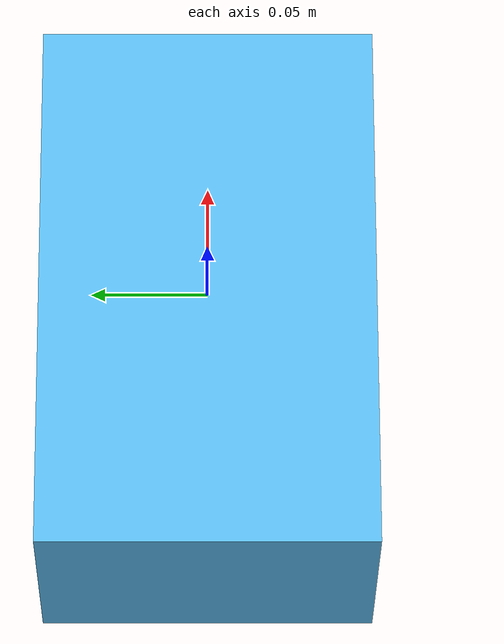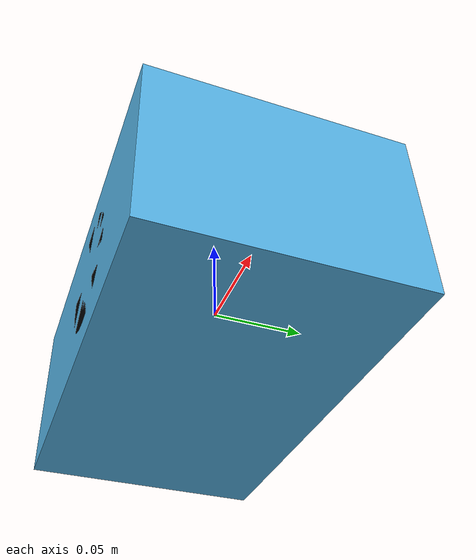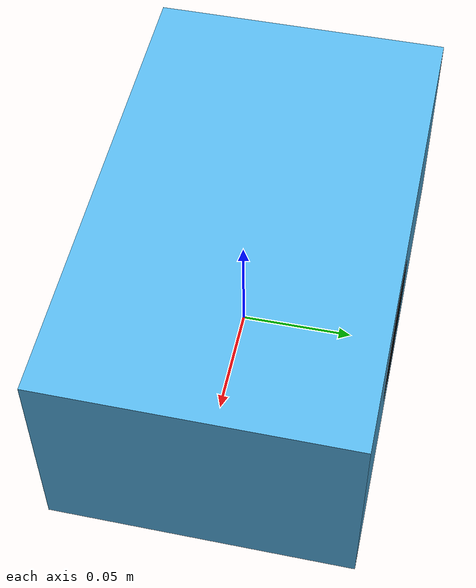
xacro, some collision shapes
<?xml version="1.0" ?>
<!--
 This is a standalone URDF model of 2WD smart car robot
 -->

<robot name="mobile_robot" xmlns:xacro="http://ros.org/wiki/xacro">

  <xacro:property name="M_PI" value="3.1415926535897931" />
  <xacro:property name="M_PI_2" value="1.570796327" />
  <xacro:property name="DEG_TO_RAD" value="0.017453293" />

  <material name="black">
    <color rgba="0 0 0 1"/>
  </material>

    <link name="base_footprint"/>
    <joint name="base_joint" type="fixed">
      <origin xyz="0 0 0.0102" rpy="0 0 -${M_PI/2}" />
      <parent link="base_footprint"/>
      <child link="base_link" />
    </joint>

    <link name="base_link">
      <visual>
        <geometry>
          <!-- new mesh -->
          <mesh filename="package://mobile_robot_2wd_description/meshes/body/chasis.dae" scale="0.001 0.001 0.001"/>

        </geometry>

	 <origin xyz="-0.07 -0.12 0" rpy="0 0 0"/>

      </visual>

      <collision>
        <geometry>
		<box size="0.14 0.23 0.1" />
        </geometry>
        <origin xyz="0.0 -0.02 0" rpy="0 0 0"/>
      </collision>

      <inertial>
        <!-- COM experimentally determined -->
        <origin xyz="-0.07 -0.12 0"/>
        <mass value="2.4"/> <!-- 2.4/2.6 kg for small/big battery pack -->

        <inertia ixx="0.019995" ixy="0.0" ixz="0.0"
                 iyy="0.019995" iyz="0.0"
                 izz="0.03675" />
      </inertial>
    </link>

<!-- Wheel and caster wheel link  -->

        <!-- NOTE This may prevent gazebo from working with this model -->
	  <joint name="left_wheel_joint" type="continuous">
	    <origin xyz="-0.06 0 0" rpy="0 0 0"/>
	    <parent link="base_link"/>
	    <child link="left_wheel_link"/>
	    <axis xyz="1 0 0"/>

      	    <limit effort="100" velocity="100"/>
            <joint_properties damping="0.0" friction="0.0"/>

	  </joint>

	  <link name="left_wheel_link">
	    <inertial>
	      <origin xyz="0 0 0"/>
	      <mass value="0.01" />
	      <inertia ixx="0.001" ixy="0.0" ixz="0.0"
	        iyy="0.001" iyz="0.0" izz="0.001" />
	    </inertial>

	    <visual>
	      <origin xyz="0 0 0" rpy="0 ${M_PI/2} 0" />
	      <geometry>
            		<cylinder radius="0.0325" length = "0.02"/>
	      </geometry>
         	 <material name ="black" />
	    </visual>

	    <collision>
	      <origin xyz="0 0 0" rpy="0 ${M_PI/2} 0" />
	      <geometry>
            		<cylinder radius="0.0325" length = "0.02"/>
	      </geometry>
	    </collision>
	  </link>

	  <link name="right_wheel_link">
	    <inertial>
	      <origin xyz="0 0 0"/>
	      <mass value="0.01" />
	      <inertia ixx="0.001" ixy="0.0" ixz="0.0"
	        iyy="0.001" iyz="0.0" izz="0.001" />
	    </inertial>

	    <visual>
	      <origin xyz="0 0 0" rpy="0 ${M_PI/2} 0" />
	      <geometry>
            		<cylinder radius="0.0325" length = "0.02"/>
	      </geometry>
          	<material name ="black" />
	    </visual>

	    <collision>
	      <origin xyz="0 0 0" rpy="0 ${M_PI/2} 0" />
	      <geometry>
            		<cylinder radius="0.0325" length = "0.02"/>
	      </geometry>
	    </collision>
	  </link>

        <!-- Fixed because we never rotate it anyway, it is just for show -->
        <!-- NOTE This may prevent gazebo from working with this model -->
	  <joint name="right_wheel_joint" type="continuous">
	    <origin xyz="0.06 0 0" rpy="0 0 0"/>
	    <parent link="base_link"/>
	    <child link="right_wheel_link"/>
	    <axis xyz="1 0 0"/>
	  </joint>

    <joint name="caster_front_joint" type="fixed">
      <parent link="base_link"/>
      <child link="chefbot_caster_front_link"/>
      <origin xyz="0.115 0.0 0.007" rpy="${-M_PI/2} 0 0"/>
    </joint>

    <link name="chefbot_caster_front_link">
      <collision>
        <geometry>
          <cylinder length="0.0176" radius="0.017"/>
        </geometry>
        <origin rpy="0 0 0" xyz="0 0 0"/>
      </collision>
      <inertial>
        <mass value="0.01" />
        <origin xyz="0 0 0" />
        <inertia ixx="0.001" ixy="0.0" ixz="0.0"
                 iyy="0.001" iyz="0.0"
                 izz="0.001" />
      </inertial>
    </link>

    <joint name="robot_caster_back_joint" type="fixed">
      <parent link="base_link"/>
      <child link="robot_caster_back_link"/>
      <origin xyz="0 -0.1 0" rpy="0 0 0"/>
    </joint>

    <link name="robot_caster_back_link">
	    <inertial>
	      <origin xyz="0 0 0"/>
	      <mass value="0.01" />
	      <inertia ixx="0.001" ixy="0.0" ixz="0.0"
	        iyy="0.001" iyz="0.0" izz="0.001" />
	    </inertial>

	    <visual>
	      <origin xyz="0 0 -0.01" rpy="0 0 0" />
	      <geometry>
            		<cylinder radius="0.01" length = "0.035"/>
	      </geometry>
          	<material name ="black" />
	    </visual>

	    <collision>
	      <origin xyz="0 0 0" rpy="0 ${M_PI/2} 0" />
	      <geometry>
            	<cylinder radius="0.01" length = "0.1"/>
	      </geometry>
	    </collision>
	  </link>

</robot>
